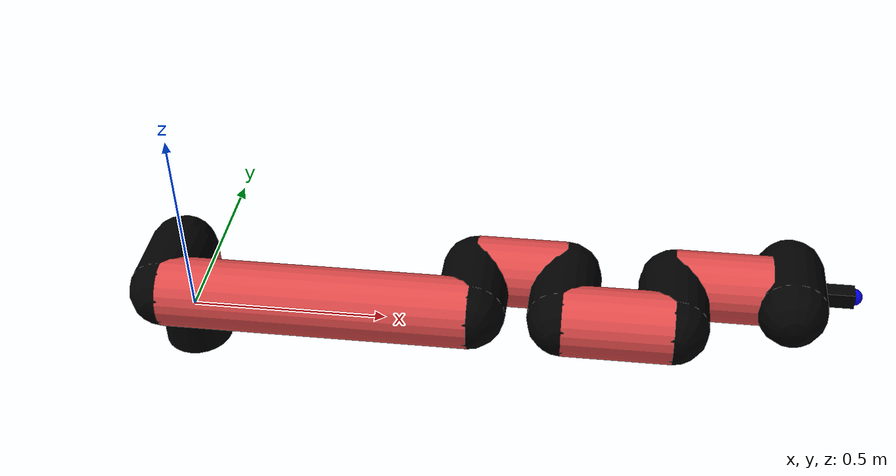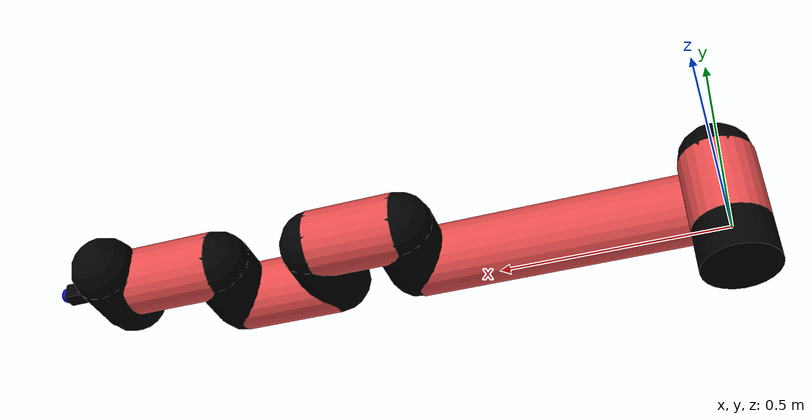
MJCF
<mujoco model="manipulator">
		<compiler angle="degree" coordinate="local" inertiafromgeom="auto" meshdir="meshes/"/>
		<option gravity="0 0 0" integrator="RK4" iterations="30" timestep="0.01"/>

		<default>
		<joint armature="1" limited="true" stiffness="10" damping="15" frictionloss="5.0"/>
		<geom conaffinity="1" condim="3" contype="1" friction=".5 .1 .1" margin="0.002"/>
		<motor ctrllimited="true"/>
		<position ctrllimited="true"/>
		</default>

		<asset>
		<texture builtin="gradient" height="100" rgb1="1.0 1.0 1.0" rgb2="1.0 1.0 1.0" type="skybox" width="100"/>
		<texture builtin="flat" height="32" name="arm_tex" rgb1="0.9 0.3 0.3" type="2d" width="32"/>
		<texture builtin="flat" height="32" name="gripper_tex" rgb1="0.0 0.0 0.0" type="cube" width="32"/>

		<material name="arm_mat" shininess="0.1" specular="0.1" texture="arm_tex"/>
		<material name="gripper_mat" shininess="1" specular="1" texture="gripper_tex"/>
		</asset>

		<worldbody>
		<light cutoff="45" diffuse=".8 .8 .8" dir="0 0.16 -1" directional="false" name="light" pos="0 -2.0 8.0" specular="0.3 0.3 0.3"/>

		<body name="base_link" pos="0 0 -0.1">
		<geom fromto="0 0 0 0 0 0.1" material="arm_mat" name="base_link" rgba="0.0 0.0 0.0 1" size="0.085" type="cylinder"/>
		</body>

		<body name="l1" pos="0 0 0">
<geom fromto="0 0 0 0 0 0.18" material="arm_mat" name="l1" rgba="0.9 0.3 0.3 1" size="0.085" type="cylinder"/>
<geom fromto="0 0 0.18 0 -0.16 0.18" material="arm_mat" name="l1_ex" rgba="0.0 0.0 0.0 1" size="0.085" type="capsule"/>
<joint axis="0 0 1" name="j1" pos="0 0 0" range="-90 90" damping="41.55" frictionloss="5.4"/>

<body name="l2" pos="0 -0.16 0.18">
<geom fromto="0 0 0 0.74 0 0" material="arm_mat" name="l2" rgba="0.9 0.3 0.3 1" size="0.085" type="cylinder"/>
<geom fromto="0.74 0 0 0.74 0.16 0" material="arm_mat" name="l2_ex" rgba="0.0 0.0 0.0 1" size="0.085" type="capsule"/>
<joint axis="0.0 1.0 0.0" name="j2" pos="0 0 0" range="-90 60" damping="27.63" frictionloss="6.16"/>

<body name="l3" pos="0.74 0.16 0">
<geom fromto="0 0 0 0.22 0 0" material="arm_mat" name="l3" rgba="0.9 0.3 0.3 1" size="0.085" type="cylinder"/>
<geom fromto="0.22 0 0 0.22 -0.16 0" material="arm_mat" name="l3_ex" rgba="0.0 0.0 0.0 1" size="0.085" type="capsule"/>
<joint axis="0.0 1.0 0.0" name="j3" pos="0 0 0" range="-30 60" damping="37.32" frictionloss="6.03"/>

<body name="l4" pos="0.22 -0.16 0">
<geom fromto="0 0 0 0.26 0 0" material="arm_mat" name="l4" rgba="0.9 0.3 0.3 1" size="0.085" type="cylinder"/>
<geom fromto="0.26 0 0 0.26 0.16 0" material="arm_mat" name="l4_ex" rgba="0.0 0.0 0.0 1" size="0.085" type="capsule"/>
<joint axis="0.0 1.0 0.0" name="j4" pos="0 0 0" range="-30 60" damping="44.11" frictionloss="14.09"/>

<body name="l5" pos="0.26 0.16 0">
<geom fromto="0 0 0 0.23 0 0" material="arm_mat" name="l5" rgba="0.9 0.3 0.3 1" size="0.085" type="cylinder"/>
<joint axis="0.0 1.0 0.0" name="j5" pos="0 0 0" range="-30 60" damping="29.31" frictionloss="6.0"/>

<body name="gripper" pos="0.23 0 0">
<geom fromto="0.05 -0.07 0 0.05 0.07 0" material="gripper_mat" name="gripper" rgba="0.0 0.0 0.0 1" size="0.085" type="capsule"/><joint axis="1 0 0" name="j6" pos="0 0 0" range="-90 90" damping="15" frictionloss="5.0"/><body name="finger" pos="0.1 0 0">
<geom fromto="0 0.0 0 0.1 0.0 0" material="gripper_mat" name="finger" rgba="0.0 0.0 0.0 1" size="0.020 0.06 0.06" type="box"/>
</body>
<site name="current" pos="0.2 0. 0.0" rgba="0. 0. 1.0 1" size="0.02" type="sphere"/>
</body>
</body>
</body>
</body>
</body>
</body>
</worldbody>
<actuator>
<motor ctrllimited="true" ctrlrange="-1.0 1.0" joint="j1" gear="59.17"/>
<motor ctrllimited="true" ctrlrange="-1.0 1.0" joint="j2" gear="53.39"/>
<motor ctrllimited="true" ctrlrange="-1.0 1.0" joint="j3" gear="112.86"/>
<motor ctrllimited="true" ctrlrange="-1.0 1.0" joint="j4" gear="63.52"/>
<motor ctrllimited="true" ctrlrange="-1.0 1.0" joint="j5" gear="92.16"/>
<motor ctrllimited="true" ctrlrange="-1.0 1.0" joint="j6" gear="80"/>
</actuator>
</mujoco>
